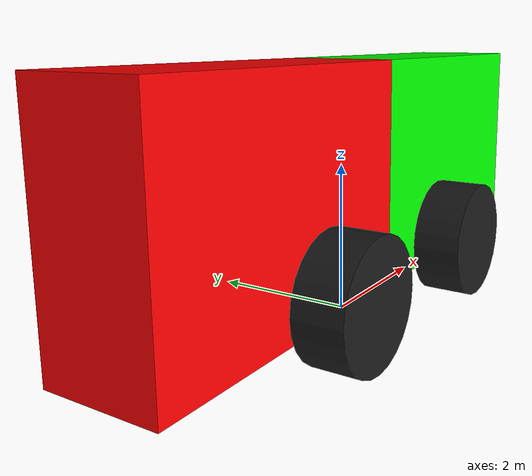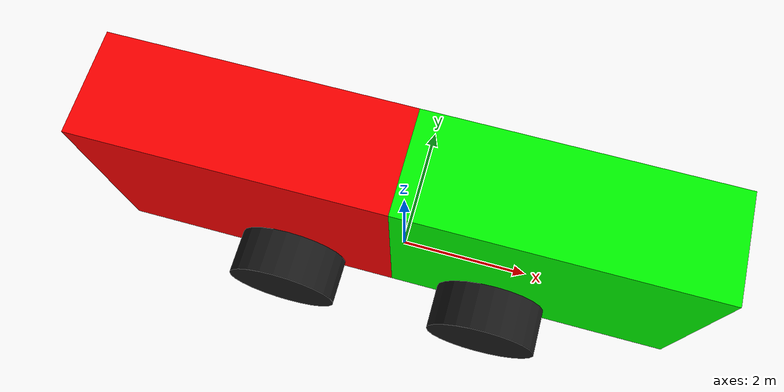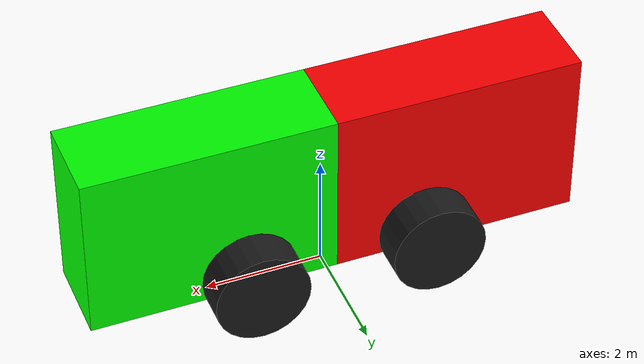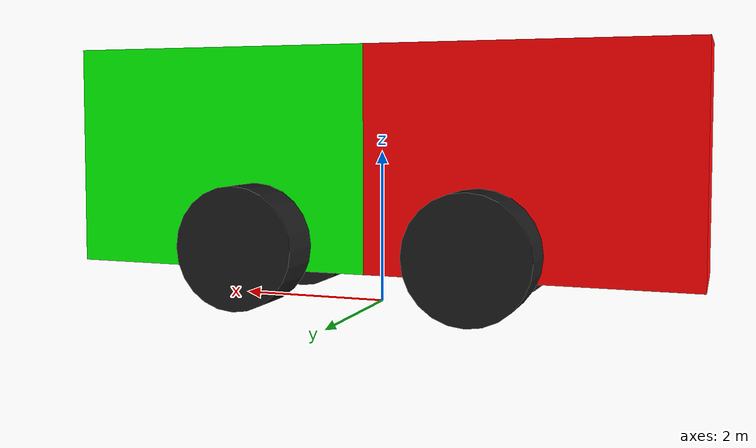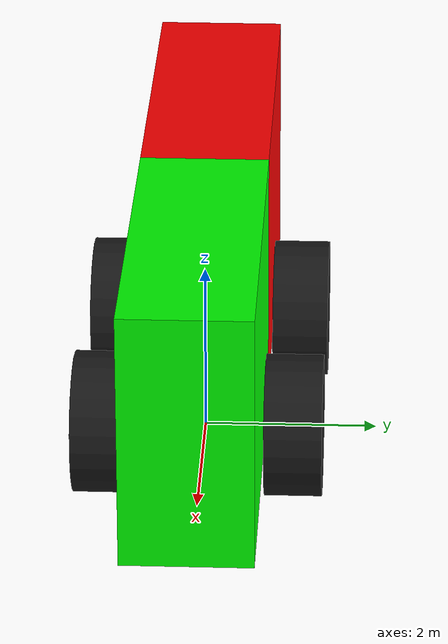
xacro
<?xml version="1.0"?>
<robot name="komatsu" xmlns:xacro="http://www.ros.org/wiki/xacro">

    <xacro:include filename="$(find robot_description)/urdf/komatsu/common_properties.xacro"/>
    <xacro:include filename="$(find robot_description)/urdf/komatsu/wheels.xacro"/>

    <material name="grey"><color rgba="0.7 0.7 0.7 1.0"/></material>
    <material name="black"><color rgba="0.1 0.1 0.1 1.0"/></material>
    <material name="green"><color rgba="0.0 1.0 0.0 1.0"/></material>
    <material name="red"><color rgba="1.0 0.0 0.0 1.0"/></material>

    <!-- ===== Dimensions ===== -->
    <xacro:property name="A_len" value="8.350"/>
    <xacro:property name="B_wheelbase" value="3.030"/>
    <xacro:property name="D_width" value="2.765"/>
    <xacro:property name="E_track" value="2.160"/>
    <xacro:property name="F_clearance" value="0.455"/>
    <xacro:property name="H_height" value="3.395"/>
    <xacro:property name="X_len" value="2.660"/> <!-- axes to front and axes to rear -->

    <xacro:property name="half_wb" value="${B_wheelbase/2.0}"/>
    <xacro:property name="wheel_radius" value="0.80"/>
    <xacro:property name="wheel_width" value="0.65"/>
    <xacro:property name="wheel_y" value="${E_track/2.0}"/>

    <xacro:property name="rear_box_len" value="${X_len + half_wb}"/>
    <xacro:property name="front_box_len" value="${X_len + half_wb}"/>
    <xacro:property name="box_w" value="${D_width-(2*wheel_width)}"/>
    <xacro:property name="box_h" value="${H_height-F_clearance}"/>
    <!-- Dynamics tuning for a heavier articulated loader body model -->
    <xacro:property name="rear_chassis_mass" value="8500.0"/>
    <xacro:property name="front_chassis_mass" value="8500.0"/>
    <xacro:property name="articulation_damping" value="650.0"/>
    <xacro:property name="articulation_friction" value="45.0"/>

    <!-- Ground frame -->
    <link name="base_footprint"/>

    <!-- Main robot reference at wheel axle / articulation height -->
    <link name="base_link"/>
    <joint name="base_link_joint" type="fixed">
        <parent link="base_footprint"/>
        <child link="base_link"/>
        <origin xyz="0 0 ${wheel_radius}" rpy="0 0 0"/>
    </joint>

    <!-- articulation center -->
    <link name="articulation_link">
        <inertial>
            <mass value="0.01"/>
            <origin xyz="0 0 0"/>
            <inertia ixx="0.001" ixy="0" ixz="0" iyy="0.001" iyz="0" izz="0.001"/>
        </inertial>
    </link>

    <joint name="base_to_articulation_joint" type="fixed">
        <parent link="base_link"/>
        <child link="articulation_link"/>
        <origin xyz="0 0 0" rpy="0 0 0"/>
    </joint>

    <!-- Body center relative to axle-height frame -->
    <xacro:property name="body_center_z" value="${F_clearance + box_h/2.0 - wheel_radius}"/>
    <xacro:property name="body_top_z" value="${body_center_z + box_h/2.0}"/>
    <!-- Place COM at the bottom quarter of body height (bottom + box_h/4). -->
    <xacro:property name="body_com_z" value="${body_center_z - box_h/4.0}"/>

    <!-- rear body -->
    <link name="rear_chassis">
        <visual>
            <origin xyz="${-rear_box_len/2.0} 0 ${body_center_z}"/>
            <geometry><box size="${rear_box_len} ${box_w} ${box_h}"/></geometry>
            <material name="red"/>
        </visual>

        <collision>
            <origin xyz="${-rear_box_len/2.0} 0 ${body_center_z}"/>
            <geometry><box size="${rear_box_len} ${box_w} ${box_h}"/></geometry>
        </collision>

        <xacro:box_inertia
                m="${rear_chassis_mass}"
                x="${rear_box_len}"
                y="${box_w}"
                z="${box_h}"
                o_xyz="${-rear_box_len/2.0} 0 ${body_com_z}"
                o_rpy="0 0 0"/>
    </link>

    <!-- front body -->
    <link name="front_chassis">
        <visual>
            <origin xyz="${front_box_len/2.0} 0 ${body_center_z}"/>
            <geometry><box size="${front_box_len} ${box_w} ${box_h}"/></geometry>
            <material name="green"/>
        </visual>

        <collision>
            <origin xyz="${front_box_len/2.0} 0 ${body_center_z}"/>
            <geometry><box size="${front_box_len} ${box_w} ${box_h}"/></geometry>
        </collision>

        <xacro:box_inertia
                m="${front_chassis_mass}"
                x="${front_box_len}"
                y="${box_w}"
                z="${box_h}"
                o_xyz="${front_box_len/2.0} 0 ${body_com_z}"
                o_rpy="0 0 0"/>
    </link>

    <!-- Simplified articulation: rear body is fixed to the articulation center, front yaws around it. -->
    <joint name="articulation_to_front" type="revolute">
        <parent link="articulation_link"/>
        <child link="front_chassis"/>
        <origin xyz="0 0 0" rpy="0 0 0"/>
        <axis xyz="0 0 1"/>
        <limit lower="-0.558505" upper="0.558505" effort="80000" velocity="0.8"/>
        <dynamics damping="${articulation_damping}" friction="${articulation_friction}"/>
    </joint>

    <joint name="articulation_to_rear" type="fixed">
        <parent link="articulation_link"/>
        <child link="rear_chassis"/>
        <origin xyz="0 0 0" rpy="0 0 0"/>
    </joint>

    <!-- ===== Wheels ===== -->
    <!-- Chassis link origins are at axle height, so wheel centers are z=0 relative to them -->
    <xacro:wheel name="rear_left_wheel"  parent="rear_chassis"  x="${-half_wb}" y="${ wheel_y}" z="0.0" radius="${wheel_radius}" width="${wheel_width}"/>
    <xacro:wheel name="rear_right_wheel" parent="rear_chassis"  x="${-half_wb}" y="${-wheel_y}" z="0.0" radius="${wheel_radius}" width="${wheel_width}"/>

    <xacro:wheel name="front_left_wheel"  parent="front_chassis" x="${ half_wb}" y="${ wheel_y}" z="0.0" radius="${wheel_radius}" width="${wheel_width}"/>
    <xacro:wheel name="front_right_wheel" parent="front_chassis" x="${ half_wb}" y="${-wheel_y}" z="0.0" radius="${wheel_radius}" width="${wheel_width}"/>

    <!-- ===== Navigation reference frames ===== -->

    <link name="base_front"/>
    <joint name="base_front_joint" type="fixed">
        <parent link="front_chassis"/>
        <child link="base_front"/>
        <origin xyz="${half_wb} 0 0" rpy="0 0 0"/>
    </joint>

    <link name="base_rear"/>
    <joint name="base_rear_joint" type="fixed">
        <parent link="rear_chassis"/>
        <child link="base_rear"/>
        <origin xyz="${-half_wb} 0 0" rpy="0 0 0"/>
    </joint>

    <!-- ===== Sensors ===== -->

    <link name="laser_frame"/>
    <joint name="laser_joint" type="fixed">
        <parent link="rear_chassis"/>
        <child link="laser_frame"/>
        <origin xyz="0.0 0.0 ${body_top_z + 0.3}" rpy="0 0 0"/>
    </joint>

    <link name="imu_link"/>
    <joint name="imu_joint" type="fixed">
        <parent link="base_link"/>
        <child link="imu_link"/>
        <origin xyz="0 0 0" rpy="0 0 0"/>
    </joint>

    <!-- GNSS antenna: mounted on top of rear chassis -->
    <link name="gnss_link"/>
    <joint name="gnss_joint" type="fixed">
        <parent link="base_link"/>
        <child link="gnss_link"/>
        <origin xyz="-1.0 0.0 2.0" rpy="0 0 0"/>
    </joint>

</robot>

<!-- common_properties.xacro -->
<robot xmlns:xacro="http://www.ros.org/wiki/xacro">

    <!-- Inertia calculation macros -->

    <xacro:macro name="box_inertia" params="m x y z o_xyz o_rpy">
        <inertial>
            <mass value="${m}" />
            <origin xyz="${o_xyz}" rpy="${o_rpy}" />
            <inertia ixx="${(m/12) * (y*y + z*z)}" ixy="0" ixz="0"
                     iyy="${(m/12) * (x*x + z*z)}" iyz="0"
                     izz="${(m/12) * (x*x + y*y)}" />
        </inertial>
    </xacro:macro>

    <xacro:macro name="cylinder_inertia" params="m r l o_xyz o_rpy">
        <inertial>
            <mass value="${m}" />
            <origin xyz="${o_xyz}" rpy="${o_rpy}" />
            <inertia ixx="${(m/12) * (3*r*r + l*l)}" ixy="0" ixz="0"
                     iyy="${(m/12) * (3*r*r + l*l)}" iyz="0"
                     izz="${(m/2) * (r*r)}" />
        </inertial>
    </xacro:macro>

    <xacro:macro name="sphere_inertia" params="m r o_xyz o_rpy">
        <inertial>
            <mass value="${m}" />
            <origin xyz="${o_xyz}" rpy="${o_rpy}" />
            <inertia ixx="${(2/5) * m * r * r}" ixy="0" ixz="0"
                     iyy="${(2/5) * m * r * r}" iyz="0"
                     izz="${(2/5) * m * r * r}" />
        </inertial>
    </xacro:macro>

</robot>

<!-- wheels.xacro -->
<robot xmlns:xacro="http://www.ros.org/wiki/xacro">

  <!-- ===== Wheel Macro ===== -->
  <xacro:macro name="wheel" params="name parent x y z:=0.80 radius:=0.80 width:=0.65">
    <link name="${name}">
      <visual>
        <origin xyz="0 0 0" rpy="1.57079632679 0 0"/>
        <geometry>
          <cylinder radius="${radius}" length="${width}"/>
        </geometry>
        <material name="black"/>
      </visual>
      <collision>
        <origin xyz="0 0 0" rpy="1.57079632679 0 0"/>
        <geometry>
          <cylinder radius="${radius}" length="${width}"/>
        </geometry>
      </collision>
      <xacro:cylinder_inertia m="50.0"
                              r="${radius}"
                              l="${width}"
                              o_xyz="0 0 0"
                              o_rpy="0 0 0"/>
    </link>

    <joint name="${name}_joint" type="continuous">
      <parent link="${parent}"/>
      <child link="${name}"/>
      <origin xyz="${x} ${y} ${z}" rpy="0 0 0"/>
      <!-- wheel rolls around Y (left axis), with ROS convention x forward, y left, z up -->
      <axis xyz="0 1 0"/>
      <limit effort="300000" velocity="25.0"/>
      <dynamics damping="0.5" friction="0.01"/>
    </joint>
  </xacro:macro>

</robot>
